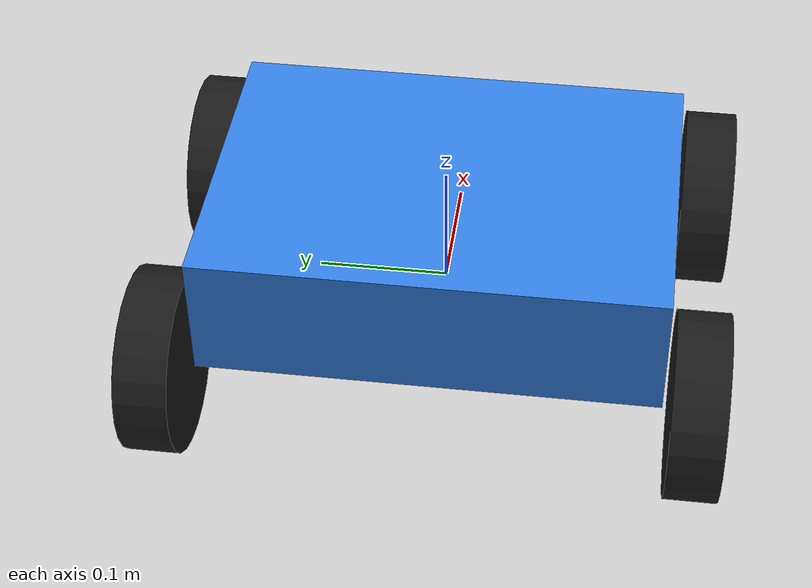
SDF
<?xml version="1.0"?>
<sdf version="1.7">
  <model name="four_wheel_robot">

    <!-- CHASSIS -->
    <link name="chassis">
      <pose>0 0 0.05 0 0 0</pose>
      <inertial>
        <mass>3.0</mass>
        <inertia>
          <ixx>0.02</ixx>
          <iyy>0.02</iyy>
          <izz>0.03</izz>
        </inertia>
      </inertial>

      <visual name="chassis_visual">
        <geometry>
          <box>
            <size>0.25 0.35 0.10</size>
          </box>
        </geometry>
        <material>
          <ambient>0.1 0.3 0.7 1</ambient>
          <diffuse>0.2 0.5 0.9 1</diffuse>   <!-- Blue body -->
          <specular>0.1 0.1 0.1 1</specular>
        </material>
      </visual>

      <collision name="chassis_collision">
        <geometry>
          <box>
            <size>0.25 0.35 0.10</size>
          </box>
        </geometry>
      </collision>
    </link>

    <!-- Wheel size -->
    <!-- radius = 0.07 m, width = 0.04 m -->

    <!-- FRONT LEFT WHEEL -->
    <link name="wheel_fl">
      <pose>0.12 0.20 0 1.5708 0 0</pose>
      <inertial>
        <mass>0.5</mass>
        <inertia>
          <ixx>0.002</ixx>
          <iyy>0.002</iyy>
          <izz>0.0015</izz>
        </inertia>
      </inertial>

      <visual name="wheel_fl_visual">
        <geometry>
          <cylinder>
            <radius>0.07</radius>
            <length>0.04</length>
          </cylinder>
        </geometry>
        <material>
          <ambient>0.2 0.2 0.2 1</ambient>
          <diffuse>0.1 0.1 0.1 1</diffuse>   <!-- Black wheels -->
        </material>
      </visual>

      <collision name="wheel_fl_collision">
        <geometry>
          <cylinder>
            <radius>0.07</radius>
            <length>0.04</length>
          </cylinder>
        </geometry>
      </collision>
    </link>

    <!-- FRONT RIGHT WHEEL -->
    <link name="wheel_fr">
      <pose>0.12 -0.20 0 1.5708 0 0</pose>
      <inertial>
        <mass>0.5</mass>
        <inertia>
          <ixx>0.002</ixx>
          <iyy>0.002</iyy>
          <izz>0.0015</izz>
        </inertia>
      </inertial>

      <visual name="wheel_fr_visual">
        <geometry>
          <cylinder>
            <radius>0.07</radius>
            <length>0.04</length>
          </cylinder>
        </geometry>
        <material>
          <ambient>0.2 0.2 0.2 1</ambient>
          <diffuse>0.1 0.1 0.1 1</diffuse>
        </material>
      </visual>

      <collision name="wheel_fr_collision">
        <geometry>
          <cylinder>
            <radius>0.07</radius>
            <length>0.04</length>
          </cylinder>
        </geometry>
      </collision>
    </link>

    <!-- REAR LEFT WHEEL -->
    <link name="wheel_rl">
      <pose>-0.12 0.20 0 1.5708 0 0</pose>
      <inertial>
        <mass>0.5</mass>
        <inertia>
          <ixx>0.002</ixx>
          <iyy>0.002</iyy>
          <izz>0.0015</izz>
        </inertia>
      </inertial>

      <visual name="wheel_rl_visual">
        <geometry>
          <cylinder>
            <radius>0.07</radius>
            <length>0.04</length>
          </cylinder>
        </geometry>
        <material>
          <ambient>0.2 0.2 0.2 1</ambient>
          <diffuse>0.1 0.1 0.1 1</diffuse>
        </material>
      </visual>

      <collision name="wheel_rl_collision">
        <geometry>
          <cylinder>
            <radius>0.07</radius>
            <length>0.04</length>
          </cylinder>
        </geometry>
      </collision>
    </link>

    <!-- REAR RIGHT WHEEL -->
    <link name="wheel_rr">
      <pose>-0.12 -0.20 0 1.5708 0 0</pose>
      <inertial>
        <mass>0.5</mass>
        <inertia>
          <ixx>0.002</ixx>
          <iyy>0.002</iyy>
          <izz>0.0015</izz>
        </inertia>
      </inertial>

      <visual name="wheel_rr_visual">
        <geometry>
          <cylinder>
            <radius>0.07</radius>
            <length>0.04</length>
          </cylinder>
        </geometry>
        <material>
          <ambient>0.2 0.2 0.2 1</ambient>
          <diffuse>0.1 0.1 0.1 1</diffuse>
        </material>
      </visual>

      <collision name="wheel_rr_collision">
        <geometry>
          <cylinder>
            <radius>0.07</radius>
            <length>0.04</length>
          </cylinder>
        </geometry>
      </collision>
    </link>

    <!-- REVOLUTE JOINTS -->
    <joint name="joint_wheel_fl" type="revolute">
      <parent>chassis</parent>
      <child>wheel_fl</child>
      <axis><xyz>1 0 0</xyz></axis>
    </joint>

    <joint name="joint_wheel_fr" type="revolute">
      <parent>chassis</parent>
      <child>wheel_fr</child>
      <axis><xyz>1 0 0</xyz></axis>
    </joint>

    <joint name="joint_wheel_rl" type="revolute">
      <parent>chassis</parent>
      <child>wheel_rl</child>
      <axis><xyz>1 0 0</xyz></axis>
    </joint>

    <joint name="joint_wheel_rr" type="revolute">
      <parent>chassis</parent>
      <child>wheel_rr</child>
      <axis><xyz>1 0 0</xyz></axis>
    </joint>

    <static>false</static>

  </model>
</sdf>
